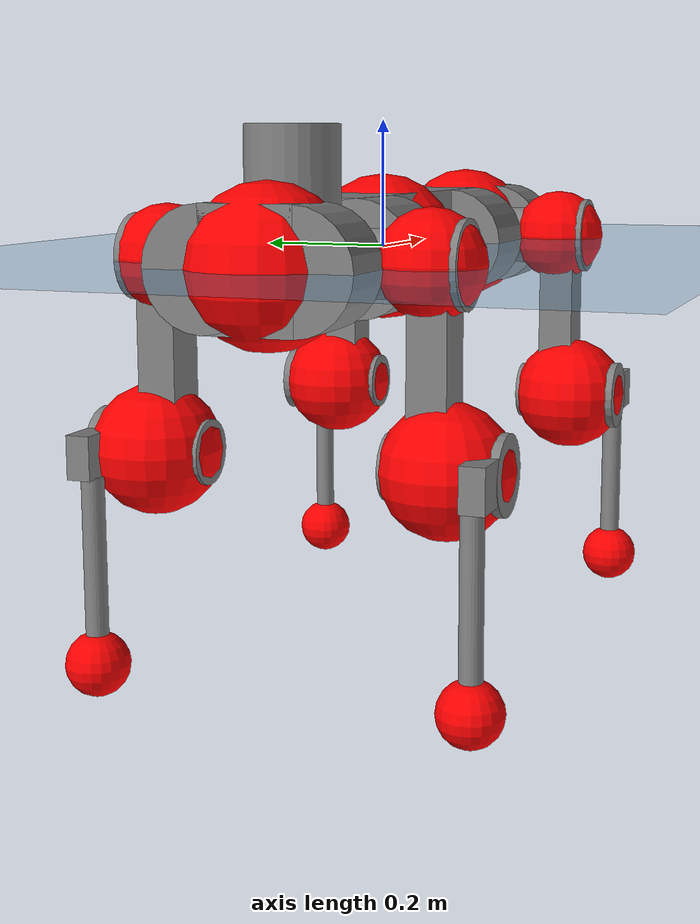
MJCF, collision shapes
<mujoco model="anymal_c">
  <compiler angle="radian" assetdir="assets" balanceinertia="true" inertiafromgeom="false"/>

  <option timestep="0.005" density="1.2" viscosity="2e-05"/>

  <size nkey="1"/>

  <visual>
    <quality shadowsize="8192"/>
    <map shadowclip="0.5"/>
  </visual>

  <default>
    <default class="/">
      <material specular="0" shininess="0.25"/>
      <geom contype="0" conaffinity="0" group="1" solref="-1000 -80"/>
      <site size="0.01 0.005 0.005" group="5"/>
      <general forcelimited="true" forcerange="-80 80" biastype="affine" gainprm="80" biasprm="0 -80 -2"/>
      <default class="anymal_c">
        <joint armature="0.01" damping="0.01" frictionloss="0.1"/>
        <default class="visual">
          <geom type="mesh" group="2"/>
          <default class="visual_zflip"/>
        </default>
        <default class="collision">
          <geom type="cylinder" group="3"/>
          <default class="foot">
            <geom size="0.03 0 0" type="sphere" condim="6" priority="1" friction="0.8 0.02 0.01" solimp="0.015 1 0.03"/>
          </default>
        </default>
      </default>
      <default class="reward_collision_sphere">
        <geom group="5" rgba="1 0 0 1"/>
      </default>
    </default>
  </default>

  <asset>
    <texture type="skybox" colorspace="auto" name="//unnamed_texture_0" builtin="gradient" rgb1="0.95 0.95 0.95" rgb2="0.95 0.95 0.95" width="100" height="600"/>
    <texture type="2d" colorspace="auto" name="texplane" builtin="checker" rgb1="0.345 0.575 0.748" rgb2="0.345 0.575 0.748" markrgb="1 1 1" width="512" height="512"/>
    <texture type="2d" colorspace="linear" name="base" file="base.png"/>
    <texture type="2d" colorspace="linear" name="top_shell" file="top_shell.png"/>
    <texture type="2d" colorspace="linear" name="bottom_shell" file="bottom_shell.png"/>
    <texture type="2d" colorspace="linear" name="remote" file="remote.png"/>
    <texture type="2d" colorspace="linear" name="hatch" file="hatch.png"/>
    <texture type="2d" colorspace="linear" name="handle" file="handle.png"/>
    <texture type="2d" colorspace="linear" name="face" file="face.png"/>
    <texture type="2d" colorspace="linear" name="battery" file="battery.png"/>
    <texture type="2d" colorspace="linear" name="lidar_cage" file="lidar_cage.png"/>
    <texture type="2d" colorspace="linear" name="depth_camera" file="depth_camera.png"/>
    <texture type="2d" colorspace="linear" name="wide_angle_camera" file="wide_angle_camera.png"/>
    <texture type="2d" colorspace="linear" name="lidar" file="lidar.png"/>
    <texture type="2d" colorspace="linear" name="drive" file="drive.png"/>
    <texture type="2d" colorspace="linear" name="hip_l" file="hip_l.png"/>
    <texture type="2d" colorspace="linear" name="shank_l" file="shank_l.png"/>
    <texture type="2d" colorspace="linear" name="foot" file="foot.png"/>
    <texture type="2d" colorspace="linear" name="thigh" file="thigh.png"/>
    <texture type="2d" colorspace="linear" name="shank_r" file="shank_r.png"/>
    <texture type="2d" colorspace="linear" name="hip_r" file="hip_r.png"/>
    <material name="MatPlane" class="/" texture="texplane" texuniform="true" texrepeat="2 2" specular="0.9" shininess="0.5"/>
    <material name="black_plastic" class="/" rgba="0.007 0.007 0.007 1"/>
    <material name="green" class="/" rgba="0.052 0.178 0.033 1"/>
    <material name="red" class="/" rgba="0.178 0.006 0.005 1"/>
    <material name="yellow" class="/" rgba="0.178 0.119 0.006 1"/>
    <material name="lwl" class="/" rgba="0.8 0.8 0.8 1"/>
    <material name="base" class="/" texture="base"/>
    <material name="top_shell" class="/" texture="top_shell"/>
    <material name="bottom_shell" class="/" texture="bottom_shell"/>
    <material name="hip_l" class="/" texture="hip_l"/>
    <material name="thigh" class="/" texture="thigh"/>
    <material name="shank_l" class="/" texture="shank_l"/>
    <material name="foot" class="/" texture="foot"/>
    <material name="hip_r" class="/" texture="hip_r"/>
    <material name="shank" class="/" texture="shank_r"/>
    <material name="hatch" class="/" texture="hatch"/>
    <material name="remote" class="/" texture="remote"/>
    <material name="handle" class="/" texture="handle"/>
    <material name="face" class="/" texture="face"/>
    <material name="depth_camera" class="/" texture="depth_camera"/>
    <material name="wide_angle_camera" class="/" texture="wide_angle_camera"/>
    <material name="battery" class="/" texture="battery"/>
    <material name="lidar_cage" class="/" texture="lidar_cage"/>
    <material name="lidar" class="/" texture="lidar"/>
    <material name="drive" class="/" texture="drive"/>
    <mesh name="base_0" class="/" file="base_0.obj"/>
    <mesh name="base_1" class="/" file="base_1.obj"/>
    <mesh name="base_2" class="/" file="base_2.obj"/>
    <mesh name="base_3" class="/" file="base_3.obj"/>
    <mesh name="base_4" class="/" file="base_4.obj"/>
    <mesh name="base_5" class="/" file="base_5.obj"/>
    <mesh name="top_shell" class="/" file="top_shell.obj"/>
    <mesh name="bottom_shell" class="/" file="bottom_shell.obj"/>
    <mesh name="remote" class="/" file="remote.obj"/>
    <mesh name="handle" class="/" file="handle.obj"/>
    <mesh name="face" class="/" file="face.obj"/>
    <mesh name="wide_angle_camera" class="/" file="wide_angle_camera.obj"/>
    <mesh name="depth_camera" class="/" file="depth_camera.obj"/>
    <mesh name="battery" class="/" file="battery.obj"/>
    <mesh name="lidar_cage" class="/" file="lidar_cage.obj"/>
    <mesh name="lidar" class="/" file="lidar.obj"/>
    <mesh name="drive" class="/" file="drive.obj"/>
    <mesh name="hip_l" class="/" file="hip_l.obj"/>
    <mesh name="thigh" class="/" file="thigh.obj"/>
    <mesh name="shank_l" class="/" file="shank_l.obj"/>
    <mesh name="foot" class="/" file="foot.obj"/>
    <mesh name="hip_r" class="/" file="hip_r.obj"/>
    <mesh name="hatch" class="/" file="hatch.obj"/>
    <mesh name="shank_r" class="/" file="shank_r.obj"/>
  </asset>

  <worldbody>
    <geom name="floor" class="/" size="100 100 0.125" type="plane" group="0" material="MatPlane"/>
    <light name="toplight_shadow" class="/" pos="0 0 5" dir="0.0990148 0.0990148 -0.990148" type="directional" ambient="0.04 0.04 0.04" diffuse="0.55 0.55 0.55" specular="0.12 0.12 0.12"/>
    <light name="toplight_fill" class="/" pos="0 0 5" dir="0.0990148 0.0990148 -0.990148" type="directional" castshadow="false" ambient="0.04 0.04 0.04" diffuse="0.3 0.3 0.3" specular="0.08 0.08 0.08"/>
    <body name="trunk" childclass="anymal_c" pos="0.000543906 -0.000101728 -0.00037221" quat="1 8.7052e-05 -0.000239173 2.84042e-06">
      <inertial pos="0.00126755 -0.00181378 0.0478326" quat="0.499124 0.503293 0.49728 0.500285" mass="16.9482" diaginertia="0.594361 0.427905 0.209131"/>
      <joint name="//unnamed_joint_0" type="free" armature="0" damping="0" frictionloss="0"/>
      <geom name="//unnamed_geom_1" class="visual" material="green" mesh="base_0"/>
      <geom name="//unnamed_geom_2" class="visual" material="yellow" mesh="base_1"/>
      <geom name="//unnamed_geom_3" class="visual" material="red" mesh="base_2"/>
      <geom name="//unnamed_geom_4" class="visual" material="black_plastic" mesh="base_3"/>
      <geom name="//unnamed_geom_5" class="visual" material="lwl" mesh="base_4"/>
      <geom name="//unnamed_geom_6" class="visual" material="base" mesh="base_5"/>
      <geom name="trunk_1" class="collision" size="0.280969 0.06782 0.0871972" type="box"/>
      <geom name="trunk_2" class="collision" size="0.0871972 0.0702422" pos="0.214804 0.0649056 0" quat="0.707107 0 0.707107 0"/>
      <geom name="trunk_3" class="collision" size="0.0871972 0.0702422" pos="-0.214804 0.0649056 0" quat="0.707107 0 0.707107 0"/>
      <geom name="trunk_4" class="collision" size="0.0871972 0.0702422" pos="0.214804 -0.0649056 0" quat="0.707107 0 0.707107 0"/>
      <geom name="trunk_5" class="collision" size="0.0871972 0.0702422" pos="-0.214804 -0.0649056 0" quat="0.707107 0 0.707107 0"/>
      <geom name="//unnamed_geom_12" class="visual" material="top_shell" mesh="top_shell"/>
      <geom name="//unnamed_geom_13" class="visual" material="bottom_shell" mesh="bottom_shell"/>
      <geom name="//unnamed_geom_14" class="visual" material="remote" mesh="remote"/>
      <geom name="//unnamed_geom_15" class="visual" material="handle" mesh="handle"/>
      <geom name="//unnamed_geom_16" class="visual" pos="0.409362 0 0" quat="1 0 0 0" material="face" mesh="face"/>
      <geom name="trunk_6" class="collision" size="0.0532872 0.06782 0.0871972" pos="0.46368 0 0" type="box"/>
      <geom name="//unnamed_geom_18" class="collision" size="0.0871972 0.0532872" pos="0.46368 0.0649056 0" quat="0.707107 0 0.707107 0"/>
      <geom name="//unnamed_geom_19" class="collision" size="0.0871972 0.0532872" pos="0.46368 -0.0649056 0" quat="0.707107 0 0.707107 0"/>
      <geom name="//unnamed_geom_20" class="visual" pos="0.455928 0 -0.0289905" quat="0.965926 0 0.258819 0" material="depth_camera" mesh="depth_camera"/>
      <geom name="//unnamed_geom_21" class="visual" pos="0.506641 0 0.0148464" material="wide_angle_camera" mesh="wide_angle_camera"/>
      <geom name="//unnamed_geom_22" class="visual_zflip" pos="-0.409362 0 0" quat="0 0 0 1" material="face" mesh="face"/>
      <geom name="trunk_7" class="collision" size="0.0532872 0.06782 0.0871972" pos="-0.46368 0 0" quat="0 0 0 1" type="box"/>
      <geom name="//unnamed_geom_24" class="collision" size="0.0871972 0.0532872" pos="-0.46368 -0.0649056 0" quat="0 -0.707107 0 0.707107"/>
      <geom name="//unnamed_geom_25" class="collision" size="0.0871972 0.0532872" pos="-0.46368 0.0649056 0" quat="0 -0.707107 0 0.707107"/>
      <geom name="//unnamed_geom_26" class="visual" pos="-0.455928 0 -0.0289905" quat="0 -0.258819 0 0.965926" material="depth_camera" mesh="depth_camera"/>
      <geom name="//unnamed_geom_27" class="visual_zflip" pos="-0.506641 0 0.0148464" quat="0 0 0 1" material="wide_angle_camera" mesh="wide_angle_camera"/>
      <geom name="//unnamed_geom_28" class="visual" material="battery" mesh="battery"/>
      <geom name="//unnamed_geom_29" class="visual" pos="0 0.0701032 0.0287787" quat="0.683013 -0.183013 0.183013 0.683013" material="depth_camera" mesh="depth_camera"/>
      <geom name="//unnamed_geom_30" class="visual" pos="0 -0.0701032 0.0287787" quat="0.683013 0.183013 0.183013 -0.683013" material="depth_camera" mesh="depth_camera"/>
      <geom name="//unnamed_geom_31" class="visual" pos="-0.359488 0 0.0728933" quat="1 0 0 0" material="lidar_cage" mesh="lidar_cage"/>
      <geom name="trunk_8" class="collision" size="0.06782 0.0581314" pos="-0.359488 0 0.132398"/>
      <geom name="//unnamed_geom_33" class="visual" pos="-0.359488 -2.37226e-05 0.141026" quat="0.707107 0 0 -0.707107" material="lidar" mesh="lidar"/>
      <geom name="//unnamed_geom_34" class="visual" pos="0.296183 0.096454 -1.11304e-09" quat="0.258819 0.965926 0 0" material="drive" mesh="drive"/>
      <geom name="//unnamed_geom_35" class="visual" pos="0.296183 -0.096454 1.11304e-09" quat="0.258819 -0.965926 0 0" material="drive" mesh="drive"/>
      <geom name="//unnamed_geom_36" class="visual" pos="-0.296183 0.096454 1.11304e-09" quat="0 0 0.965926 -0.258819" material="drive" mesh="drive"/>
      <geom name="//unnamed_geom_37" class="visual" pos="-0.296183 -0.096454 -1.11304e-09" quat="0 0 -0.965926 -0.258819" material="drive" mesh="drive"/>
      <geom name="//unnamed_geom_38" class="visual" pos="0.114562 0 0.0723974" quat="1 0 0 0" material="hatch" mesh="hatch"/>
      <geom name="//unnamed_geom_39" class="reward_collision_sphere" size="0.116263"/>
      <geom name="//unnamed_geom_40" class="reward_collision_sphere" size="0.116263" pos="0.444422 0 0"/>
      <geom name="//unnamed_geom_41" class="reward_collision_sphere" size="0.116263" pos="-0.444422 0 0"/>
      <site name="imu" pos="0.234428 0.00606919 0.0539242" size="0.00968857"/>
      <camera name="track" pos="0 -1.85444 0" quat="0.707107 0.707107 0 0" mode="trackcom"/>
      <camera name="ego_camera" pos="0.444422 0 -0.0396698" quat="-0.5 -0.5 0.5 0.5"/>
      <body name="LF_HIP" pos="0.29675 0.0970028 0.000855717" quat="0.259217 0.965819 0.000154067 0.000148229">
        <inertial pos="0.0577133 -0.0131775 -0.00865111" quat="-0.128776 0.709516 -0.134432 0.679655" mass="2.46751" diaginertia="0.00536112 0.00337859 0.0031135"/>
        <joint name="LF_HAA" pos="0 0 0" axis="0.999976 0.00234158 0.00645888" range="-0.728651 0.478051" armature="0.0107067" damping="0" frictionloss="0.0972873"/>
        <geom name="//unnamed_geom_42" class="visual" pos="0 -6.54752e-05 1.07542e-05" quat="0.258819 -0.965926 0 0" material="hip_l" mesh="hip_l"/>
        <geom name="//unnamed_geom_43" class="visual" pos="0.0591575 -0.0709098 -0.041417" quat="0.183013 -0.683013 0.683013 0.183013" material="drive" mesh="drive"/>
        <geom name="//unnamed_geom_44" class="collision" size="0.0484429 0.06782" pos="0.0591575 -0.0110894 -0.00684801" quat="-0.353553 -0.612372 0.612372 -0.353553"/>
        <body name="LF_THIGH" pos="0.0595233 -0.0664715 -0.0411517" quat="0.182857 -0.683205 0.682735 0.183486">
          <inertial pos="0.0297329 0.000252783 -0.241843" quat="0.993176 -0.00606629 -0.0833163 0.0813853" mass="2.79899" diaginertia="0.0278972 0.0205725 0.00403271"/>
          <joint name="LF_HFE" pos="0 0 0" axis="0.999939 0.00964207 -0.00540953" range="-3.127 3.13551" armature="0.00973479" damping="0.0145346" frictionloss="0.0891856"/>
          <geom name="//unnamed_geom_45" class="visual" pos="0.00120137 1.89308e-06 0" quat="0.707107 0 0 -0.707107" material="thigh" mesh="thigh"/>
          <geom name="//unnamed_geom_46" class="collision" size="0.0629757 0.0387543" pos="0.0395042 0 0" quat="0.5 0.5 -0.5 -0.5"/>
          <geom name="//unnamed_geom_47" class="collision" size="0.0363322 0.0290657 0.136913" pos="0.0296281 0 -0.140148" quat="0.707107 0 0 -0.707107" type="box"/>
          <geom name="//unnamed_geom_48" class="visual" pos="0.0990567 0 -0.282648" quat="1 0 0 0" material="drive" mesh="drive"/>
          <geom name="//unnamed_geom_49" class="collision" size="0.0484429 0.06782" pos="0.0299244 0 -0.282648" quat="0.707107 0 0.707107 0"/>
          <geom name="//unnamed_geom_50" class="reward_collision_sphere" size="0.0775086" pos="0.0246901 0 0"/>
          <body name="LF_SHANK" pos="0.100154 -0.00163833 -0.284933" quat="1 -0.000584571 9.54034e-05 0.000191115">
            <inertial pos="0.00575669 -0.0567356 -0.0795173" quat="0.993048 -0.115279 -0.00383256 -0.0235053" mass="0.537924" diaginertia="0.00960482 0.006309 0.00108585"/>
            <joint name="LF_KFE" pos="0 0 0" axis="0.999999 0.000668225 -0.000852842" range="-3.14523 3.11948" armature="0.00936883" damping="0" frictionloss="0.0967457"/>
            <geom name="//unnamed_geom_51" class="visual" pos="0.00039174 0.00208878 0" quat="0.707107 0 0 -0.707107" material="shank_l" mesh="shank_l"/>
            <geom name="LF_kfe_act" class="collision" size="0.0581314 0.0193771" pos="0.0197521 0 0" quat="0.5 0.5 -0.5 -0.5"/>
            <geom name="//unnamed_geom_53" class="collision" size="0.0557083 0.0326989 0.0184083" pos="0.0197521 -0.0533143 0" quat="0.5 0.5 -0.5 -0.5" type="box"/>
            <geom name="//unnamed_geom_54" class="visual" pos="0.0128881 -0.0808761 -0.33518" quat="0.382683 0 0 -0.92388" material="foot" mesh="foot"/>
            <geom name="LF_calf" class="collision" size="0.016955 0.136853" pos="0.0128882 -0.0815492 -0.16759" quat="0.707107 0 0 -0.707107"/>
            <geom name="LF_foot" class="foot" size="0.0323389" pos="0.0128882 -0.0815492 -0.312866" quat="0.707107 0 0 -0.707107"/>
            <geom name="//unnamed_geom_57" class="reward_collision_sphere" size="0.0968857" pos="-0.0493802 0 0"/>
            <geom name="//unnamed_geom_58" class="reward_collision_sphere" size="0.0484429" pos="0.0128882 -0.0815492 -0.312866"/>
            <site name="LF_foot" class="foot" pos="0.0128882 -0.0815492 -0.312866" quat="0.707107 0 0 -0.707107" size="0.00968857"/>
          </body>
        </body>
      </body>
      <body name="RF_HIP" pos="0.296878 -0.0961282 0.00141727" quat="0.258814 -0.965927 -7.51164e-06 -5.60803e-06">
        <inertial pos="0.0576372 0.0139401 -0.00775239" quat="0.135628 0.679337 0.126404 0.71002" mass="2.54628" diaginertia="0.00556077 0.00335136 0.00314639"/>
        <joint name="RF_HAA" pos="0 0 0" axis="0.999994 -0.000235818 -0.00340222" range="-0.529123 0.725225" armature="0.00895497" damping="0.010694" frictionloss="0.0888395"/>
        <geom name="//unnamed_geom_59" class="visual" pos="0 6.54746e-05 1.07542e-05" quat="0.258819 0.965926 0 0" material="hip_r" mesh="hip_r"/>
        <geom name="//unnamed_geom_60" class="visual" pos="0.0591575 0.0709098 -0.041417" quat="0.183013 0.683013 0.683013 -0.183013" material="drive" mesh="drive"/>
        <geom name="//unnamed_geom_61" class="collision" size="0.0484429 0.06782" pos="0.0591575 0.0110894 -0.00684801" quat="-0.353553 0.612372 0.612372 0.353553"/>
        <body name="RF_THIGH" pos="0.0604324 0.0692277 -0.0413529" quat="0.182949 0.683057 0.682956 -0.183123">
          <inertial pos="0.0306722 0.000106748 -0.243999" quat="0.99341 -0.00851567 -0.0792841 0.0823282" mass="2.69383" diaginertia="0.0283085 0.0202637 0.00392966"/>
          <joint name="RF_HFE" pos="0 0 0" axis="0.999995 -0.00162869 -0.00259892" stiffness="0.00509155" range="-3.09789 3.14363" armature="0.00979899" damping="0.00276402" frictionloss="0.108616"/>
          <geom name="//unnamed_geom_62" class="visual" pos="0.00120137 1.89308e-06 0" quat="0.707107 0 0 -0.707107" material="thigh" mesh="thigh"/>
          <geom name="//unnamed_geom_63" class="collision" size="0.0629757 0.0387543" pos="0.0395042 0 0" quat="0.5 0.5 0.5 0.5"/>
          <geom name="//unnamed_geom_64" class="collision" size="0.0363322 0.0290657 0.136913" pos="0.0296281 0 -0.140148" quat="0.707107 0 0 0.707107" type="box"/>
          <geom name="//unnamed_geom_65" class="visual" pos="0.0990567 0 -0.282648" quat="1 0 0 0" material="drive" mesh="drive"/>
          <geom name="//unnamed_geom_66" class="collision" size="0.0484429 0.06782" pos="0.0299244 0 -0.282648" quat="0.707107 0 0.707107 0"/>
          <geom name="//unnamed_geom_67" class="reward_collision_sphere" size="0.0775086" pos="0.0246901 0 0"/>
          <body name="RF_SHANK" pos="0.100114 -0.00160589 -0.283644" quat="1 -0.000120594 0.000139826 3.85127e-05">
            <inertial pos="0.00572991 0.0565544 -0.0778216" quat="0.992898 0.116535 -0.00111002 0.023916" mass="0.534485" diaginertia="0.00930115 0.00625585 0.00107949"/>
            <joint name="RF_KFE" pos="0 0 0" axis="0.999999 -0.00117427 -0.000820382" range="-3.1248 3.13468" armature="0.0101609" damping="0.0109166" frictionloss="0.086649"/>
            <geom name="//unnamed_geom_68" class="visual" pos="0.000391738 -0.00208877 0" quat="0.707107 0 0 0.707107" material="shank" mesh="shank_r"/>
            <geom name="RF_kfe_act" class="collision" size="0.0581314 0.0193771" pos="0.0197521 0 0" quat="0.5 0.5 0.5 0.5"/>
            <geom name="//unnamed_geom_70" class="collision" size="0.0557083 0.0326989 0.0184083" pos="0.0197521 0.0533143 0" quat="0.5 0.5 0.5 0.5" type="box"/>
            <geom name="//unnamed_geom_71" class="visual" pos="0.0128883 0.0808761 -0.33518" quat="0.382683 0 0 0.92388" material="foot" mesh="foot"/>
            <geom name="RF_calf" class="collision" size="0.016955 0.136853" pos="0.0128882 0.0815492 -0.16759" quat="0.707107 0 0 0.707107"/>
            <geom name="RF_foot" class="foot" size="0.0271654" pos="0.0128882 0.0815492 -0.312866" quat="0.707107 0 0 0.707107"/>
            <geom name="//unnamed_geom_74" class="reward_collision_sphere" size="0.0968857" pos="-0.0493802 0 0"/>
            <geom name="//unnamed_geom_75" class="reward_collision_sphere" size="0.0484429" pos="0.0128882 0.0815492 -0.312866"/>
            <site name="RF_foot" class="foot" pos="0.0128882 0.0815492 -0.312866" quat="0.707107 0 0 0.707107" size="0.00968857"/>
          </body>
        </body>
      </body>
      <body name="LH_HIP" pos="-0.297687 0.0963811 -0.000229471" quat="-0.000197247 0.000123686 0.965941 -0.258761">
        <inertial pos="0.0552196 0.0157089 -0.00798427" quat="0.134863 0.679091 0.127304 0.71024" mass="2.50676" diaginertia="0.00547656 0.00340194 0.00303942"/>
        <joint name="LH_HAA" pos="0 0 0" axis="0.999992 0.00160553 -0.00358398" stiffness="0.00271648" range="-0.513881 0.675067" armature="0.00876822" damping="0.0130158" frictionloss="0.0964349"/>
        <geom name="//unnamed_geom_76" class="visual" pos="0 6.54746e-05 1.07542e-05" quat="-0.258819 -0.965926 0 0" material="hip_r" mesh="hip_r"/>
        <geom name="//unnamed_geom_77" class="visual" pos="0.0591575 0.0709098 -0.041417" quat="0.183013 0.683013 0.683013 -0.183013" material="drive" mesh="drive"/>
        <geom name="//unnamed_geom_78" class="collision" size="0.0484429 0.06782" pos="0.0591575 0.0110894 -0.00684801" quat="-0.353553 0.612372 0.612372 0.353553"/>
        <body name="LH_THIGH" pos="0.0581476 0.0652721 -0.0408359" quat="0.183036 0.682916 0.683086 -0.183078">
          <inertial pos="0.0304788 0.000980376 -0.243662" quat="0.992613 -0.00742183 -0.0812499 0.089798" mass="2.78502" diaginertia="0.0284403 0.0205116 0.00396461"/>
          <joint name="LH_HFE" pos="0 0 0" axis="0.99997 0.00380163 -0.0067919" range="-3.14122 3.12923" armature="0.0100194" damping="0.0129263" frictionloss="0.0919765"/>
          <geom name="//unnamed_geom_79" class="visual" pos="0.00120137 1.89308e-06 0" quat="0.707107 0 0 -0.707107" material="thigh" mesh="thigh"/>
          <geom name="//unnamed_geom_80" class="collision" size="0.0629757 0.0387543" pos="0.0395042 0 0" quat="0.5 0.5 -0.5 -0.5"/>
          <geom name="//unnamed_geom_81" class="collision" size="0.0363322 0.0290657 0.136913" pos="0.0296281 0 -0.140148" quat="0.707107 0 0 -0.707107" type="box"/>
          <geom name="//unnamed_geom_82" class="visual" pos="0.0990567 0 -0.282648" quat="1 0 0 0" material="drive" mesh="drive"/>
          <geom name="//unnamed_geom_83" class="collision" size="0.0484429 0.06782" pos="0.0299244 0 -0.282648" quat="0.707107 0 0.707107 0"/>
          <geom name="//unnamed_geom_84" class="reward_collision_sphere" size="0.0775086" pos="0.0246901 0 0"/>
          <body name="LH_SHANK" pos="0.099372 -6.7982e-05 -0.282373" quat="1 0.000265223 -6.62398e-05 -0.000229496">
            <inertial pos="0.00543851 0.056606 -0.0797377" quat="0.99208 0.122347 0.00891659 0.0270163" mass="0.535625" diaginertia="0.0096005 0.00636852 0.00104342"/>
            <joint name="LH_KFE" pos="0 0 0" axis="0.999964 -0.0084447 0.000105203" range="-3.13758 3.1407" armature="0.00930635" damping="0.0103935" frictionloss="0.0974141"/>
            <geom name="//unnamed_geom_85" class="visual" pos="0.000391738 -0.00208877 0" quat="-0.707107 0 0 -0.707107" material="shank" mesh="shank_r"/>
            <geom name="LH_kfe_act" class="collision" size="0.0581314 0.0193771" pos="0.0197521 0 0" quat="0.5 0.5 -0.5 -0.5"/>
            <geom name="//unnamed_geom_87" class="collision" size="0.0557083 0.0326989 0.0184083" pos="0.0197521 0.0533143 0" quat="0.5 0.5 -0.5 -0.5" type="box"/>
            <geom name="//unnamed_geom_88" class="visual" pos="0.0128883 0.0808761 -0.33518" quat="-0.382683 0 0 -0.92388" material="foot" mesh="foot"/>
            <geom name="LH_calf" class="collision" size="0.016955 0.136853" pos="0.0128882 0.0815492 -0.16759" quat="0.707107 0 0 -0.707107"/>
            <geom name="LH_foot" class="foot" size="0.0339657" pos="0.0128882 0.0815492 -0.312866" quat="0.707107 0 0 -0.707107"/>
            <geom name="//unnamed_geom_91" class="reward_collision_sphere" size="0.0968857" pos="-0.0493802 0 0"/>
            <geom name="//unnamed_geom_92" class="reward_collision_sphere" size="0.0484429" pos="0.0128882 0.0815492 -0.312866"/>
            <site name="LH_foot" class="foot" pos="0.0128882 0.0815492 -0.312866" quat="0.707107 0 0 -0.707107" size="0.00968857"/>
          </body>
        </body>
      </body>
      <body name="RH_HIP" pos="-0.296205 -0.0988882 0.00103997" quat="0.000481938 -0.000275953 -0.965929 -0.258808">
        <inertial pos="0.0540722 -0.0139497 -0.00701513" quat="-0.125925 0.709066 -0.138491 0.679845" mass="2.55252" diaginertia="0.00554778 0.00339596 0.00309998"/>
        <joint name="RH_HAA" pos="0 0 0" axis="1 -0.000271702 0.000282256" range="-0.751068 0.537535" armature="0.00946918" damping="0.00830481" frictionloss="0.0978029"/>
        <geom name="//unnamed_geom_93" class="visual" pos="0 -6.54752e-05 1.07542e-05" quat="-0.258819 0.965926 0 0" material="hip_l" mesh="hip_l"/>
        <geom name="//unnamed_geom_94" class="visual" pos="0.0591575 -0.0709098 -0.041417" quat="-0.183013 0.683013 -0.683013 -0.183013" material="drive" mesh="drive"/>
        <geom name="//unnamed_geom_95" class="collision" size="0.0484429 0.06782" pos="0.0591575 -0.0110894 -0.00684801" quat="0.353553 0.612372 -0.612372 0.353553"/>
        <body name="RH_THIGH" pos="0.0595934 -0.0669271 -0.0404556" quat="-0.182989 0.682964 -0.683097 -0.182904">
          <inertial pos="0.0312102 0.000542085 -0.243385" quat="0.9932 -0.00512163 -0.0805214 0.0839301" mass="2.63695" diaginertia="0.0270978 0.0198783 0.00387733"/>
          <joint name="RH_HFE" pos="0 0 0" axis="0.999991 0.00375915 0.0020976" range="-3.13292 3.14596" armature="0.0101747" damping="0.0127749" frictionloss="0.0973331"/>
          <geom name="//unnamed_geom_96" class="visual" pos="0.00120137 1.89308e-06 0" quat="0.707107 0 0 -0.707107" material="thigh" mesh="thigh"/>
          <geom name="//unnamed_geom_97" class="collision" size="0.0629757 0.0387543" pos="0.0395042 0 0" quat="0.5 0.5 0.5 0.5"/>
          <geom name="//unnamed_geom_98" class="collision" size="0.0363322 0.0290657 0.136913" pos="0.0296281 0 -0.140148" quat="0.707107 0 0 0.707107" type="box"/>
          <geom name="//unnamed_geom_99" class="visual" pos="0.0990567 0 -0.282648" quat="1 0 0 0" material="drive" mesh="drive"/>
          <geom name="//unnamed_geom_100" class="collision" size="0.0484429 0.06782" pos="0.0299244 0 -0.282648" quat="0.707107 0 0.707107 0"/>
          <geom name="//unnamed_geom_101" class="reward_collision_sphere" size="0.0775086" pos="0.0246901 0 0"/>
          <body name="RH_SHANK" pos="0.0973015 0.000771647 -0.283422" quat="1 8.99181e-05 -5.65196e-05 -0.00039774">
            <inertial pos="0.00650054 -0.0567972 -0.0796888" quat="0.993334 -0.111559 0.00256427 -0.028904" mass="0.54174" diaginertia="0.00966107 0.00646913 0.00108138"/>
            <joint name="RH_KFE" pos="0 0 0" axis="1 -8.13078e-05 -7.02089e-05" range="-3.13611 3.15512" armature="0.008664" damping="0.00290915" frictionloss="0.0966167"/>
            <geom name="//unnamed_geom_102" class="visual" pos="0.00039174 0.00208878 0" quat="0.707107 0 0 -0.707107" material="shank_l" mesh="shank_l"/>
            <geom name="RH_kfe_act" class="collision" size="0.0581314 0.0193771" pos="0.0197521 0 0" quat="0.5 0.5 0.5 0.5"/>
            <geom name="//unnamed_geom_104" class="collision" size="0.0557083 0.0326989 0.0184083" pos="0.0197521 -0.0533143 0" quat="0.5 0.5 0.5 0.5" type="box"/>
            <geom name="//unnamed_geom_105" class="visual" pos="0.0128881 -0.0808761 -0.33518" quat="0.382683 0 0 -0.92388" material="foot" mesh="foot"/>
            <geom name="RH_calf" class="collision" size="0.016955 0.136853" pos="0.0128882 -0.0815492 -0.16759" quat="0.707107 0 0 0.707107"/>
            <geom name="RH_foot" class="foot" size="0.0254148" pos="0.0128882 -0.0815492 -0.312866" quat="0.707107 0 0 0.707107"/>
            <geom name="//unnamed_geom_108" class="reward_collision_sphere" size="0.0968857" pos="-0.0493802 0 0"/>
            <geom name="//unnamed_geom_109" class="reward_collision_sphere" size="0.0484429" pos="0.0128882 -0.0815492 -0.312866"/>
            <site name="RH_foot" class="foot" pos="0.0128882 -0.0815492 -0.312866" quat="0.707107 0 0 0.707107" size="0.00968857"/>
          </body>
        </body>
      </body>
    </body>
  </worldbody>

  <contact>
    <pair class="/" geom1="floor" geom2="LF_foot" name="//unnamed_contact_0"/>
    <pair class="/" geom1="floor" geom2="RF_foot" name="//unnamed_contact_1"/>
    <pair class="/" geom1="floor" geom2="LH_foot" name="//unnamed_contact_2"/>
    <pair class="/" geom1="floor" geom2="RH_foot" name="//unnamed_contact_3"/>
  </contact>

  <actuator>
    <general name="LF_HAA" class="/" joint="LF_HAA" forcerange="-77.4209 77.4209" gainprm="83.5295" biasprm="0 -83.5295 -1.912"/>
    <general name="LF_HFE" class="/" joint="LF_HFE" forcerange="-79.2052 79.2052" gainprm="83.5295" biasprm="0 -83.5295 -1.912"/>
    <general name="LF_KFE" class="/" joint="LF_KFE" forcerange="-77.9523 77.9523" gainprm="83.5295" biasprm="0 -83.5295 -1.912"/>
    <general name="RF_HAA" class="/" joint="RF_HAA" forcerange="-78.5518 78.5518" gainprm="83.5295" biasprm="0 -83.5295 -1.912"/>
    <general name="RF_HFE" class="/" joint="RF_HFE" forcerange="-76.7089 76.7089" gainprm="83.5295" biasprm="0 -83.5295 -1.912"/>
    <general name="RF_KFE" class="/" joint="RF_KFE" forcerange="-73.7854 73.7854" gainprm="83.5295" biasprm="0 -83.5295 -1.912"/>
    <general name="LH_HAA" class="/" joint="LH_HAA" forcerange="-77.7556 77.7556" gainprm="83.5295" biasprm="0 -83.5295 -1.912"/>
    <general name="LH_HFE" class="/" joint="LH_HFE" forcerange="-73.9831 73.9831" gainprm="83.5295" biasprm="0 -83.5295 -1.912"/>
    <general name="LH_KFE" class="/" joint="LH_KFE" forcerange="-77.6454 77.6454" gainprm="83.5295" biasprm="0 -83.5295 -1.912"/>
    <general name="RH_HAA" class="/" joint="RH_HAA" forcerange="-80.3602 80.3602" gainprm="83.5295" biasprm="0 -83.5295 -1.912"/>
    <general name="RH_HFE" class="/" joint="RH_HFE" forcerange="-72.0434 72.0434" gainprm="83.5295" biasprm="0 -83.5295 -1.912"/>
    <general name="RH_KFE" class="/" joint="RH_KFE" forcerange="-81.3462 81.3462" gainprm="83.5295" biasprm="0 -83.5295 -1.912"/>
  </actuator>

  <sensor>
    <gyro site="imu" name="imu_angular_velocity"/>
    <velocimeter site="imu" name="imu_linear_velocity"/>
    <framelinvel objtype="site" objname="LF_foot" name="LF_foot_global_linear_velocity"/>
    <framelinvel objtype="site" objname="RF_foot" name="RF_foot_global_linear_velocity"/>
    <framelinvel objtype="site" objname="LH_foot" name="LH_foot_global_linear_velocity"/>
    <framelinvel objtype="site" objname="RH_foot" name="RH_foot_global_linear_velocity"/>
  </sensor>

  <keyframe>
    <key name="home" qpos="0 0 0.55 1 0 0 0 0 0.4 -0.8 0 -0.4 0.8 0 -0.4 0.8 0 0.4 -0.8"/>
  </keyframe>
</mujoco>
